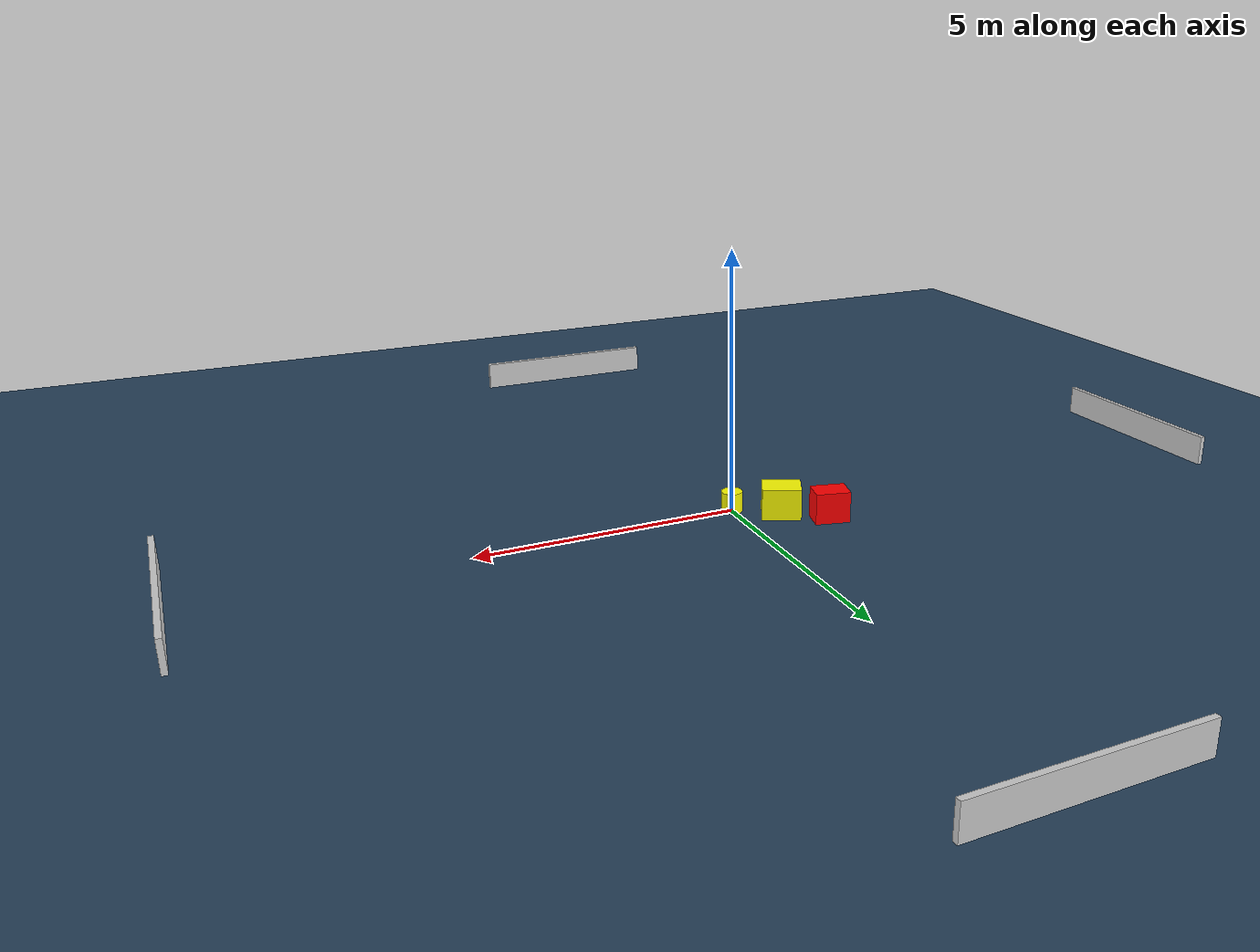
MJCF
<?xml version="1.0" ?>
<mujoco model="generated_environment">
  <option timestep="0.01" integrator="RK4" cone="elliptic"/>
  <default>
    <geom density="1"/>
  </default>
  <asset>
    <texture builtin="gradient" height="3072" name="skybox" rgb1="0.3 0.5 0.7" rgb2="0 0 0" type="skybox" width="512"/>
    <texture builtin="checker" height="300" name="groundplane" rgb1="0.2 0.3 0.4" rgb2="0.1 0.2 0.3" type="2d" width="300"/>
    <material name="groundplane" reflectance="0.2" texrepeat="5 5" texture="groundplane"/>
  </asset>
  <worldbody>
    <light dir="0 0 -1" directional="true" pos="0 0 1.5"/>
    <geom condim="3" friction="0.5 0.005 0.001" material="groundplane" name="floor" pos="0 0 0" size="0 0 0.05" type="plane"/>
    <body name="walls">
      <geom name="wall_1" condim="4" pos="-10.0 0.0 0.3" rgba="0.800000011920929 0.800000011920929 0.800000011920929 1.0" size="0.05 2.0 0.3" type="box"/>
      <geom name="wall_2" condim="4" pos="10.0 0.0 0.3" rgba="0.800000011920929 0.800000011920929 0.800000011920929 1.0" size="0.05 2.0 0.3" type="box"/>
      <geom name="wall_3" condim="4" pos="0.0 -10.0 0.3" rgba="0.800000011920929 0.800000011920929 0.800000011920929 1.0" size="2.0 0.05 0.3" type="box"/>
      <geom name="wall_4" condim="4" pos="0.0 10.0 0.3" rgba="0.800000011920929 0.800000011920929 0.800000011920929 1.0" size="2.0 0.05 0.3" type="box"/>
    </body>
    <body name="robot">
      <joint name="joint_x" type="slide" pos="0 0 0" axis="1 0 0"/>
      <joint name="joint_y" type="slide" pos="0 0 0" axis="0 1 0"/>
      <geom name="robot" type="cylinder" pos="0.0 0.0 0.2" size="0.2 0.2 0.0" mass="5.0" friction="1.0 0.005 0.0001" condim="4" rgba="1.0 1.0 0.0 1.0"/>
    </body>
    <body name="obstacle_1_movable">
      <geom name="obstacle_1_movable" condim="4" pos="-0.7600179095851085 0.5731778101367032 0.3" euler="0 0 154.32396351520487" friction="0.0 0.005 0.001" rgba="1.0 1.0 0.0 1.0" size="0.369578759819635 0.2966699528309001 0.3" type="box" mass="0.1"/>
      <joint type="free"/>
    </body>
    <body name="obstacle_2_static">
      <geom name="obstacle_2_static" condim="4" pos="-1.4783341432753987 1.1630407546665844 0.3" euler="0 0 255.83632197494126" friction="0.0 0.005 0.001" rgba="1.0 0.0 0.0 1.0" size="0.23716855110912405 0.3317120903045728 0.3" type="box"/>
    </body>
  </worldbody>
  <actuator>
    <motor name="actuator_x" joint="joint_x" gear="1" ctrlrange="-1 1"/>
    <motor name="actuator_y" joint="joint_y" gear="1" ctrlrange="-1 1"/>
  </actuator>
</mujoco>
